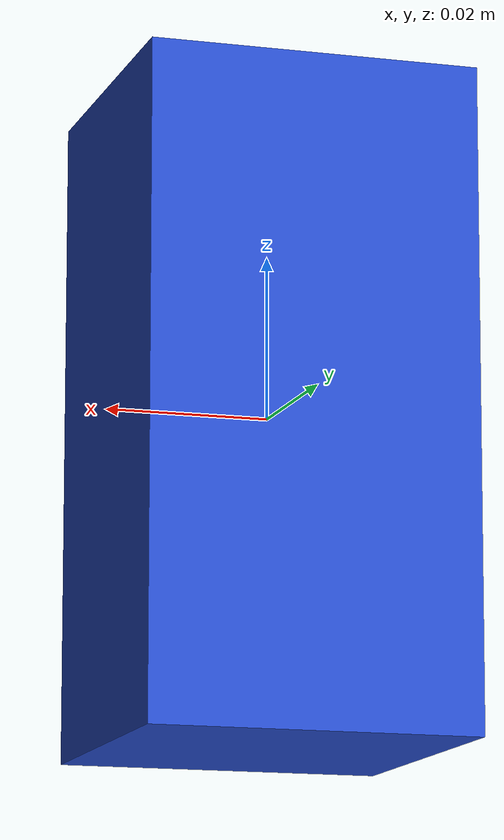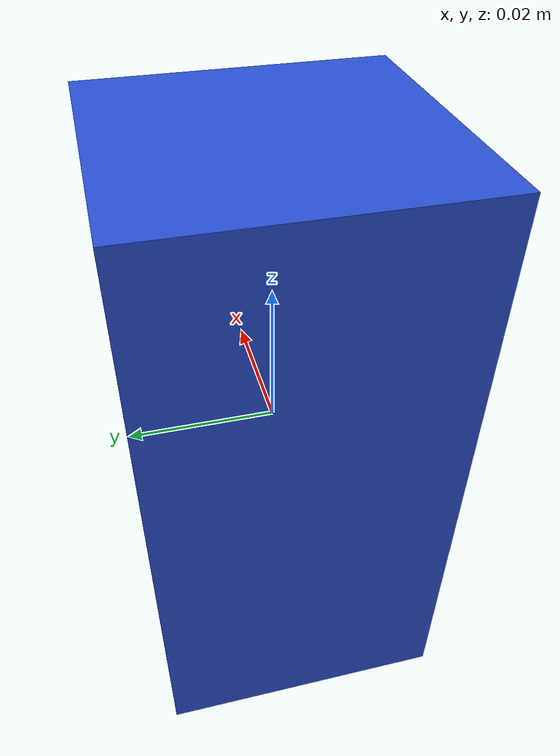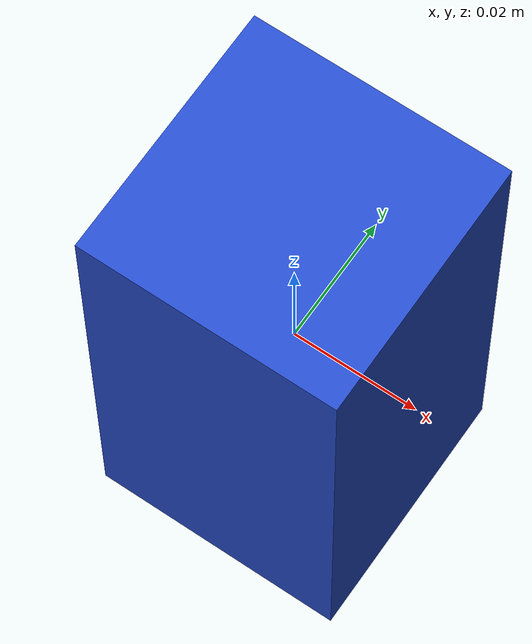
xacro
<?xml version="1.0"?>
 <robot xmlns:xacro="http://www.ros.org/wiki/xacro" name="simple_box">
    <link name="object_base_link">
    </link>

    <joint name="object_base_joint" type="fixed">
        <parent link="object_base_link"/>
        <child link="object_link"/>
        <axis xyz="0 0 1" />
        <origin xyz="0 0 0" rpy="0 0 0"/>
    </joint>

   <link name="object_link">
     <inertial>
       <origin xyz="0 0 0" />
       <mass value="1.0" />
       <inertia  ixx="1.0" ixy="0.0"  ixz="0.0"  iyy="100.0"  iyz="0.0"  izz="1.0" />
     </inertial>
     <visual>
       <origin xyz="0 0 0"/>
       <geometry>
         <box size="0.04 0.04 0.08" />
        </geometry>
     </visual>
     <collision>
       <origin xyz="0 0 0"/>
       <geometry>
         <box size="0.04 0.04 0.08" />
       </geometry>
     </collision>
   </link>

   <gazebo reference="object_base_link">
    <gravity>0</gravity>
   </gazebo>

   <gazebo reference="object_link">
     <material>Gazebo/Blue</material>
   </gazebo>

 <!-- camera -->
  <gazebo reference="object_link">
    <sensor type="camera" name="camera1">
      <update_rate>30.0</update_rate>
      <camera name="head">
        <horizontal_fov>1.3962634</horizontal_fov>
        <image>
          <width>800</width>
          <height>800</height>
          <format>R8G8B8</format>
        </image>
        <clip>
          <near>0.02</near>
          <far>300</far>
        </clip>
        <noise>
          <type>gaussian</type>
          <!-- Noise is sampled independently per pixel on each frame.
               That pixel's noise value is added to each of its color
               channels, which at that point lie in the range [0,1]. -->
          <mean>0.0</mean>
          <stddev>0.007</stddev>
        </noise>
      </camera>
      <plugin name="camera_controller" filename="libgazebo_ros_camera.so">
        <alwaysOn>true</alwaysOn>
        <updateRate>0.0</updateRate>
        <cameraName>rrbot/camera1</cameraName>
        <imageTopicName>image_raw</imageTopicName>
        <cameraInfoTopicName>camera_info</cameraInfoTopicName>
        <frameName>camera_link</frameName>
        <hackBaseline>0.07</hackBaseline>
        <distortionK1>0.0</distortionK1>
        <distortionK2>0.0</distortionK2>
        <distortionK3>0.0</distortionK3>
        <distortionT1>0.0</distortionT1>
        <distortionT2>0.0</distortionT2>
      </plugin>
    </sensor>
  </gazebo>
 </robot>
